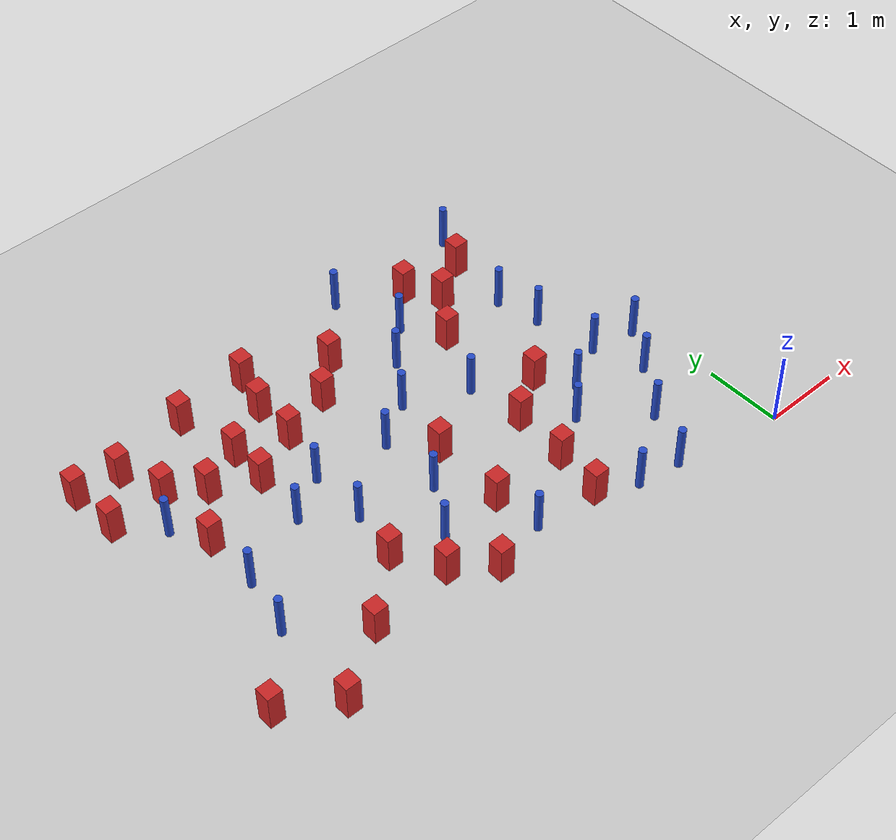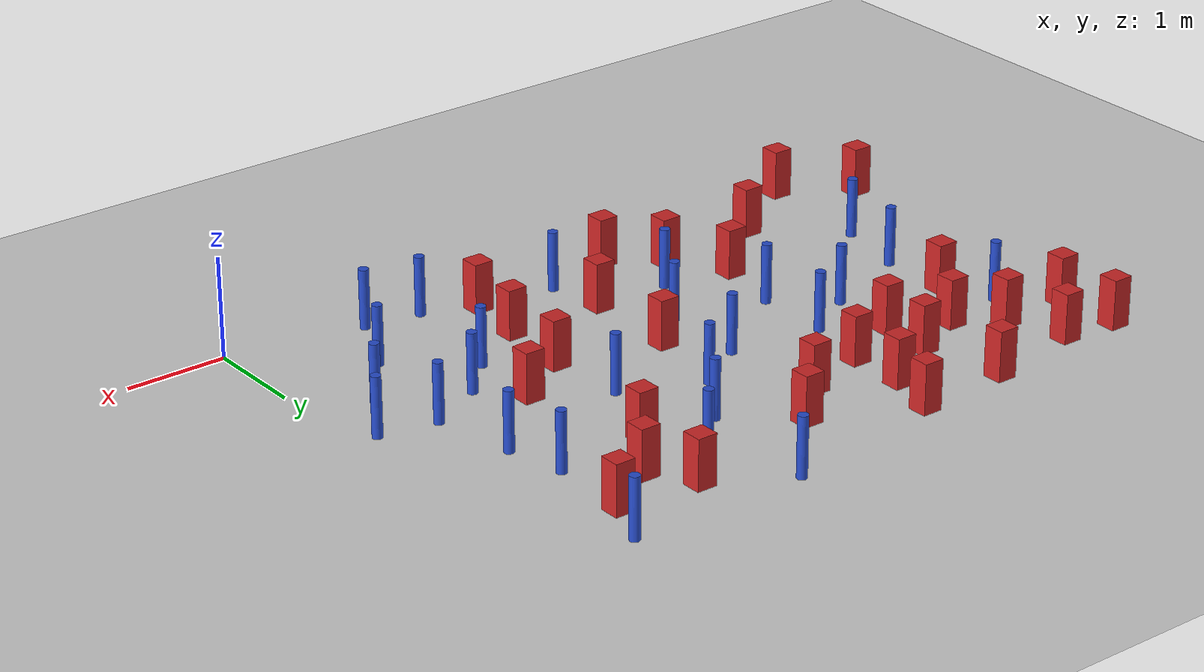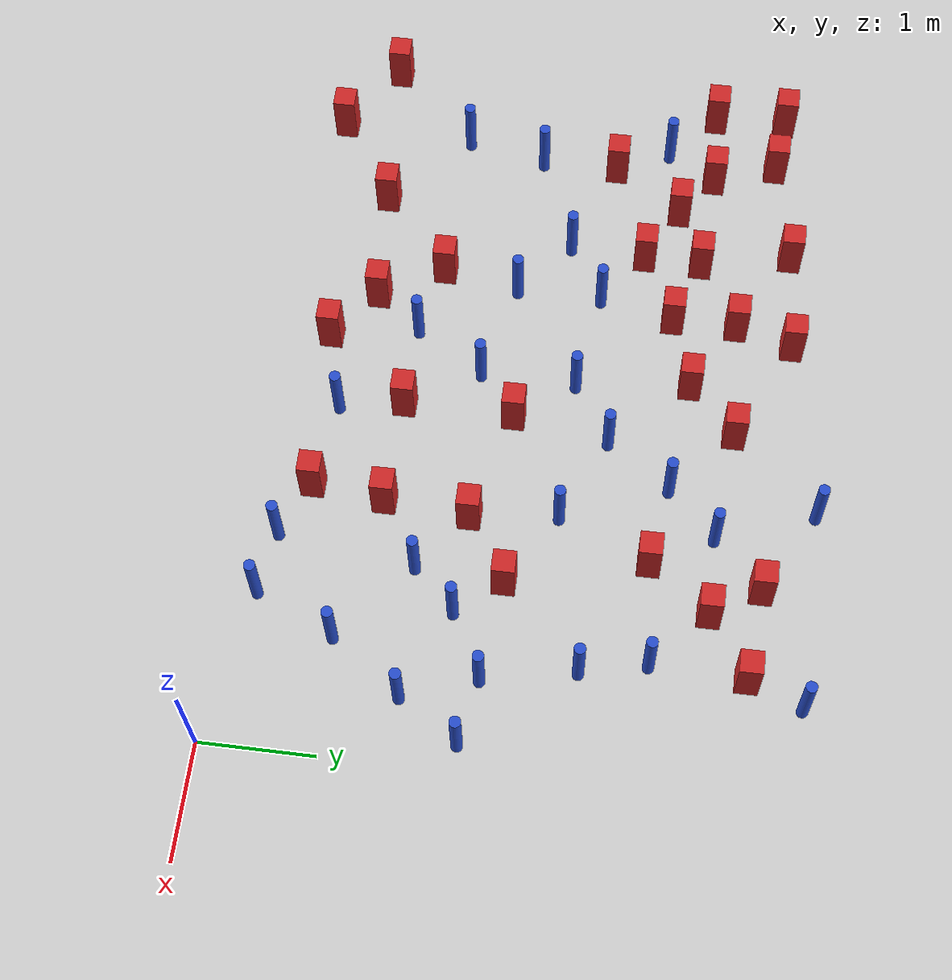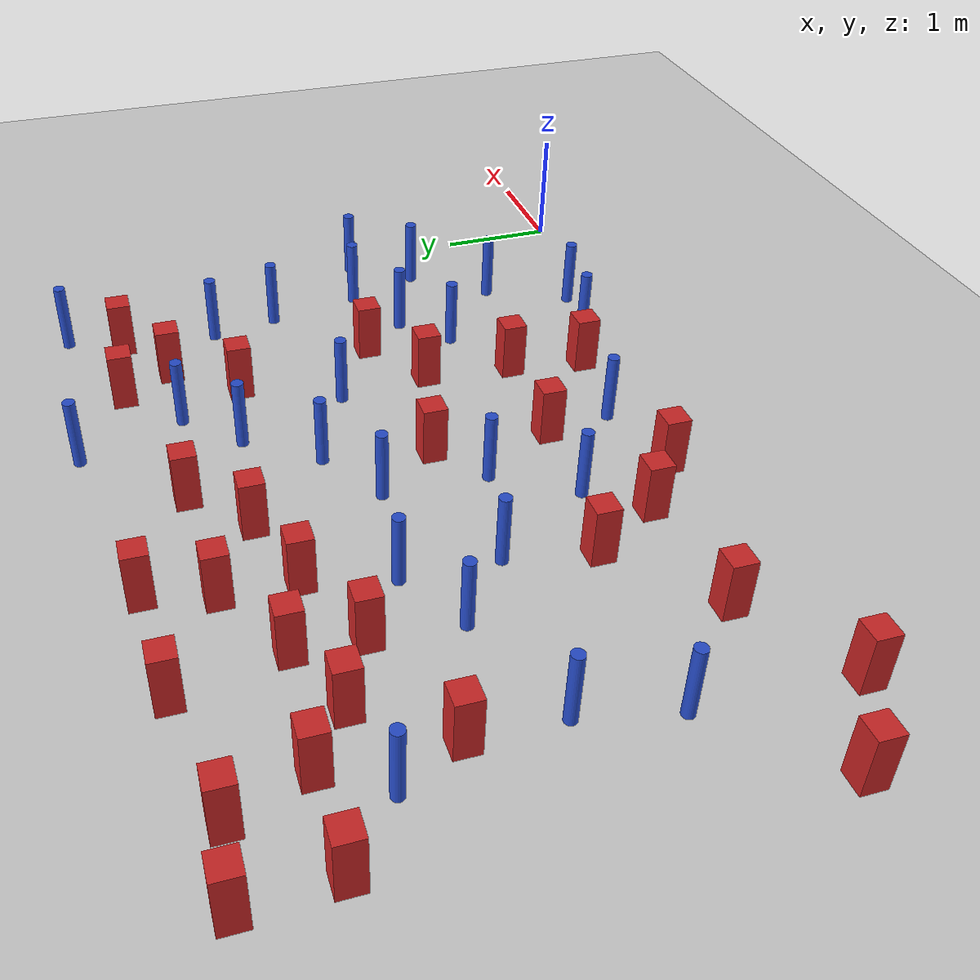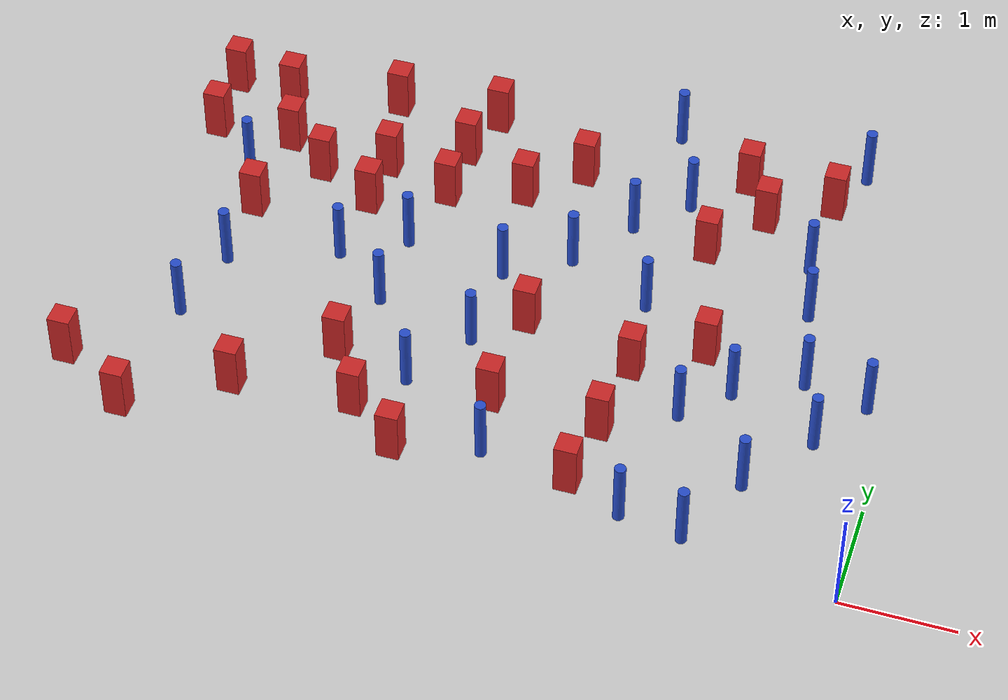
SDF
<sdf version="1.6">
 <world name="default">
  <model name="ground_plane">
   <static>1</static>
   <link name="link">
    <collision name="collision">
     <geometry><plane><normal>0 0 1</normal><size>100 100</size></plane></geometry>
     <surface><friction><ode><mu>100</mu><mu2>50</mu2></ode></friction></surface>
    </collision>
    <visual name="visual">
     <cast_shadows>0</cast_shadows>
     <geometry><plane><normal>0 0 1</normal><size>100 100</size></plane></geometry>
     <material>
      <ambient>1.0 1.0 1.0 1.0</ambient>
      <diffuse>0.8 0.8 0.8 1.0</diffuse>
      <specular>0.01 0.01 0.01 1.000000</specular>
     </material>
    </visual>
   </link>
  </model>
  <model name="pole_obstacle5">
   <static>true</static>
   <pose>-0.953068003208 3.04514547028 -9.47619616065e-06 5.49618799737e-07 2.36310414063e-07 -1.55090534799e-07</pose>
   <link name="link">
    <pose>0 0 0.3 0 -0 0</pose>
    <inertial>
     <mass>1</mass>
     <inertia><ixx>0.145833</ixx><ixy>0</ixy><ixz>0</ixz><iyy>0.145833</iyy><iyz>0</iyz><izz>0.125</izz></inertia>
    </inertial>
    <collision name="collision">
     <geometry><cylinder><radius>0.05</radius><length>.6</length></cylinder></geometry>
    </collision>
    <visual name="visual">
     <geometry><cylinder><radius>0.05</radius><length>.6</length></cylinder></geometry>
     <material>
      <script><name>Gazebo/Blue</name><uri>file://media/materials/scripts/gazebo.material</uri></script>
     </material>
    </visual>
   </link>
  </model>
  <model name="square_post_obstacle15">
   <static>true</static>
   <pose>-2.33421557105 1.21266840727 -6.11067671241e-07 -5.50515727128e-06 -8.79689657224e-07 2.37013304536e-05</pose>
   <link name="link">
    <pose>0 0 0.25 0 -0 0</pose>
    <inertial>
     <mass>100</mass>
     <inertia>
      <ixx>0.166667</ixx>
      <ixy>0</ixy>
      <ixz>0</ixz>
      <iyy>0.166667</iyy>
      <iyz>0</iyz>
      <izz>0.166667</izz>
     </inertia>
    </inertial>
    <collision name="collision"><geometry><box><size>.2 .2 .5</size></box></geometry></collision>
    <visual name="visual">
     <geometry><box><size>.2 .2 .5</size></box></geometry>
     <material>
      <script><name>Gazebo/Red</name><uri>file://media/materials/scripts/gazebo.material</uri></script>
     </material>
    </visual>
   </link>
  </model>
  <model name="pole_obstacle10">
   <static>true</static>
   <pose>-3.21601077242 0.668306440457 -9.47619616065e-06 5.49618799737e-07 2.36310414035e-07 -1.55090534817e-07</pose>
   <link name="link">
    <pose>0 0 0.3 0 -0 0</pose>
    <inertial>
     <mass>1</mass>
     <inertia><ixx>0.145833</ixx><ixy>0</ixy><ixz>0</ixz><iyy>0.145833</iyy><iyz>0</iyz><izz>0.125</izz></inertia>
    </inertial>
    <collision name="collision">
     <geometry><cylinder><radius>0.05</radius><length>.6</length></cylinder></geometry>
    </collision>
    <visual name="visual">
     <geometry><cylinder><radius>0.05</radius><length>.6</length></cylinder></geometry>
     <material>
      <script><name>Gazebo/Blue</name><uri>file://media/materials/scripts/gazebo.material</uri></script>
     </material>
    </visual>
   </link>
  </model>
  <model name="pole_obstacle12">
   <static>true</static>
   <pose>-4.60165757841 2.87989179332 -9.47619616065e-06 5.49618799738e-07 2.36310414051e-07 -1.55090534805e-07</pose>
   <link name="link">
    <pose>0 0 0.3 0 -0 0</pose>
    <inertial>
     <mass>1</mass>
     <inertia><ixx>0.145833</ixx><ixy>0</ixy><ixz>0</ixz><iyy>0.145833</iyy><iyz>0</iyz><izz>0.125</izz></inertia>
    </inertial>
    <collision name="collision">
     <geometry><cylinder><radius>0.05</radius><length>.6</length></cylinder></geometry>
    </collision>
    <visual name="visual">
     <geometry><cylinder><radius>0.05</radius><length>.6</length></cylinder></geometry>
     <material>
      <script><name>Gazebo/Blue</name><uri>file://media/materials/scripts/gazebo.material</uri></script>
     </material>
    </visual>
   </link>
  </model>
  <model name="square_post_obstacle27">
   <static>true</static>
   <pose>-4.41894908498 0.850606576677 -6.11067671241e-07 -5.50515727128e-06 -8.79689657224e-07 2.37013304536e-05</pose>
   <link name="link">
    <pose>0 0 0.25 0 -0 0</pose>
    <inertial>
     <mass>100</mass>
     <inertia>
      <ixx>0.166667</ixx>
      <ixy>0</ixy>
      <ixz>0</ixz>
      <iyy>0.166667</iyy>
      <iyz>0</iyz>
      <izz>0.166667</izz>
     </inertia>
    </inertial>
    <collision name="collision"><geometry><box><size>.2 .2 .5</size></box></geometry></collision>
    <visual name="visual">
     <geometry><box><size>.2 .2 .5</size></box></geometry>
     <material>
      <script><name>Gazebo/Red</name><uri>file://media/materials/scripts/gazebo.material</uri></script>
     </material>
    </visual>
   </link>
  </model>
  <model name="pole_obstacle31">
   <static>true</static>
   <pose>-0.565450874374 1.59621999711 -9.47619616065e-06 5.49618799738e-07 2.36310414061e-07 -1.55090534801e-07</pose>
   <link name="link">
    <pose>0 0 0.3 0 -0 0</pose>
    <inertial>
     <mass>1</mass>
     <inertia><ixx>0.145833</ixx><ixy>0</ixy><ixz>0</ixz><iyy>0.145833</iyy><iyz>0</iyz><izz>0.125</izz></inertia>
    </inertial>
    <collision name="collision">
     <geometry><cylinder><radius>0.05</radius><length>.6</length></cylinder></geometry>
    </collision>
    <visual name="visual">
     <geometry><cylinder><radius>0.05</radius><length>.6</length></cylinder></geometry>
     <material>
      <script><name>Gazebo/Blue</name><uri>file://media/materials/scripts/gazebo.material</uri></script>
     </material>
    </visual>
   </link>
  </model>
  <model name="pole_obstacle35">
   <static>true</static>
   <pose>-0.220098208647 2.12647914286 -9.4761961606e-06 5.49618799729e-07 2.36310413995e-07 -1.55090534826e-07</pose>
   <link name="link">
    <pose>0 0 0.3 0 -0 0</pose>
    <inertial>
     <mass>1</mass>
     <inertia><ixx>0.145833</ixx><ixy>0</ixy><ixz>0</ixz><iyy>0.145833</iyy><iyz>0</iyz><izz>0.125</izz></inertia>
    </inertial>
    <collision name="collision">
     <geometry><cylinder><radius>0.05</radius><length>.6</length></cylinder></geometry>
    </collision>
    <visual name="visual">
     <geometry><cylinder><radius>0.05</radius><length>.6</length></cylinder></geometry>
     <material>
      <script><name>Gazebo/Blue</name><uri>file://media/materials/scripts/gazebo.material</uri></script>
     </material>
    </visual>
   </link>
  </model>
  <model name="square_post_obstacle39">
   <static>true</static>
   <pose>-6.32148838797 0.246880284549 -6.11067671241e-07 -5.50515727128e-06 -8.79689657224e-07 2.37013304536e-05</pose>
   <link name="link">
    <pose>0 0 0.25 0 -0 0</pose>
    <inertial>
     <mass>100</mass>
     <inertia>
      <ixx>0.166667</ixx>
      <ixy>0</ixy>
      <ixz>0</ixz>
      <iyy>0.166667</iyy>
      <iyz>0</iyz>
      <izz>0.166667</izz>
     </inertia>
    </inertial>
    <collision name="collision"><geometry><box><size>.2 .2 .5</size></box></geometry></collision>
    <visual name="visual">
     <geometry><box><size>.2 .2 .5</size></box></geometry>
     <material>
      <script><name>Gazebo/Red</name><uri>file://media/materials/scripts/gazebo.material</uri></script>
     </material>
    </visual>
   </link>
  </model>
  <model name="square_post_obstacle47">
   <static>true</static>
   <pose>-5.10277533483 3.24362882426 -6.11067671241e-07 -5.50515727128e-06 -8.79689657224e-07 2.37013304536e-05</pose>
   <link name="link">
    <pose>0 0 0.25 0 -0 0</pose>
    <inertial>
     <mass>100</mass>
     <inertia>
      <ixx>0.166667</ixx>
      <ixy>0</ixy>
      <ixz>0</ixz>
      <iyy>0.166667</iyy>
      <iyz>0</iyz>
      <izz>0.166667</izz>
     </inertia>
    </inertial>
    <collision name="collision"><geometry><box><size>.2 .2 .5</size></box></geometry></collision>
    <visual name="visual">
     <geometry><box><size>.2 .2 .5</size></box></geometry>
     <material>
      <script><name>Gazebo/Red</name><uri>file://media/materials/scripts/gazebo.material</uri></script>
     </material>
    </visual>
   </link>
  </model>
  <model name="pole_obstacle46">
   <static>true</static>
   <pose>-4.61126781005 2.1109563667 -9.47619616065e-06 5.49618799738e-07 2.36310414051e-07 -1.55090534805e-07</pose>
   <link name="link">
    <pose>0 0 0.3 0 -0 0</pose>
    <inertial>
     <mass>1</mass>
     <inertia><ixx>0.145833</ixx><ixy>0</ixy><ixz>0</ixz><iyy>0.145833</iyy><iyz>0</iyz><izz>0.125</izz></inertia>
    </inertial>
    <collision name="collision">
     <geometry><cylinder><radius>0.05</radius><length>.6</length></cylinder></geometry>
    </collision>
    <visual name="visual">
     <geometry><cylinder><radius>0.05</radius><length>.6</length></cylinder></geometry>
     <material>
      <script><name>Gazebo/Blue</name><uri>file://media/materials/scripts/gazebo.material</uri></script>
     </material>
    </visual>
   </link>
  </model>
  <model name="square_post_obstacle57">
   <static>true</static>
   <pose>-6.05487835221 3.82142807516 -6.11067671241e-07 -5.50515727128e-06 -8.79689657224e-07 2.37013304536e-05</pose>
   <link name="link">
    <pose>0 0 0.25 0 -0 0</pose>
    <inertial>
     <mass>100</mass>
     <inertia>
      <ixx>0.166667</ixx>
      <ixy>0</ixy>
      <ixz>0</ixz>
      <iyy>0.166667</iyy>
      <iyz>0</iyz>
      <izz>0.166667</izz>
     </inertia>
    </inertial>
    <collision name="collision"><geometry><box><size>.2 .2 .5</size></box></geometry></collision>
    <visual name="visual">
     <geometry><box><size>.2 .2 .5</size></box></geometry>
     <material>
      <script><name>Gazebo/Red</name><uri>file://media/materials/scripts/gazebo.material</uri></script>
     </material>
    </visual>
   </link>
  </model>
  <model name="square_post_obstacle66">
   <static>true</static>
   <pose>-2.26788447009 1.9641347179 -6.11067671241e-07 -5.50515727128e-06 -8.79689657224e-07 2.37013304536e-05</pose>
   <link name="link">
    <pose>0 0 0.25 0 -0 0</pose>
    <inertial>
     <mass>100</mass>
     <inertia>
      <ixx>0.166667</ixx>
      <ixy>0</ixy>
      <ixz>0</ixz>
      <iyy>0.166667</iyy>
      <iyz>0</iyz>
      <izz>0.166667</izz>
     </inertia>
    </inertial>
    <collision name="collision"><geometry><box><size>.2 .2 .5</size></box></geometry></collision>
    <visual name="visual">
     <geometry><box><size>.2 .2 .5</size></box></geometry>
     <material>
      <script><name>Gazebo/Red</name><uri>file://media/materials/scripts/gazebo.material</uri></script>
     </material>
    </visual>
   </link>
  </model>
  <model name="pole_obstacle65">
   <static>true</static>
   <pose>-1.36015397111 0.264044783699 -9.47619616065e-06 5.49618799737e-07 2.36310414064e-07 -1.55090534799e-07</pose>
   <link name="link">
    <pose>0 0 0.3 0 -0 0</pose>
    <inertial>
     <mass>1</mass>
     <inertia><ixx>0.145833</ixx><ixy>0</ixy><ixz>0</ixz><iyy>0.145833</iyy><iyz>0</iyz><izz>0.125</izz></inertia>
    </inertial>
    <collision name="collision">
     <geometry><cylinder><radius>0.05</radius><length>.6</length></cylinder></geometry>
    </collision>
    <visual name="visual">
     <geometry><cylinder><radius>0.05</radius><length>.6</length></cylinder></geometry>
     <material>
      <script><name>Gazebo/Blue</name><uri>file://media/materials/scripts/gazebo.material</uri></script>
     </material>
    </visual>
   </link>
  </model>
  <model name="square_post_obstacle74">
   <static>true</static>
   <pose>-6.98948690886 0.68153054935 -6.11067671241e-07 -5.50515727128e-06 -8.79689657224e-07 2.37013304536e-05</pose>
   <link name="link">
    <pose>0 0 0.25 0 -0 0</pose>
    <inertial>
     <mass>100</mass>
     <inertia>
      <ixx>0.166667</ixx>
      <ixy>0</ixy>
      <ixz>0</ixz>
      <iyy>0.166667</iyy>
      <iyz>0</iyz>
      <izz>0.166667</izz>
     </inertia>
    </inertial>
    <collision name="collision"><geometry><box><size>.2 .2 .5</size></box></geometry></collision>
    <visual name="visual">
     <geometry><box><size>.2 .2 .5</size></box></geometry>
     <material>
      <script><name>Gazebo/Red</name><uri>file://media/materials/scripts/gazebo.material</uri></script>
     </material>
    </visual>
   </link>
  </model>
  <model name="pole_obstacle70">
   <static>true</static>
   <pose>-6.24569965573 1.46182236954 -9.47619616065e-06 5.49618799738e-07 2.36310414071e-07 -1.55090534796e-07</pose>
   <link name="link">
    <pose>0 0 0.3 0 -0 0</pose>
    <inertial>
     <mass>1</mass>
     <inertia><ixx>0.145833</ixx><ixy>0</ixy><ixz>0</ixz><iyy>0.145833</iyy><iyz>0</iyz><izz>0.125</izz></inertia>
    </inertial>
    <collision name="collision">
     <geometry><cylinder><radius>0.05</radius><length>.6</length></cylinder></geometry>
    </collision>
    <visual name="visual">
     <geometry><cylinder><radius>0.05</radius><length>.6</length></cylinder></geometry>
     <material>
      <script><name>Gazebo/Blue</name><uri>file://media/materials/scripts/gazebo.material</uri></script>
     </material>
    </visual>
   </link>
  </model>
  <model name="pole_obstacle74">
   <static>true</static>
   <pose>-6.08423297261 2.19082523521 -9.47619616065e-06 5.49618799738e-07 2.36310414051e-07 -1.55090534805e-07</pose>
   <link name="link">
    <pose>0 0 0.3 0 -0 0</pose>
    <inertial>
     <mass>1</mass>
     <inertia><ixx>0.145833</ixx><ixy>0</ixy><ixz>0</ixz><iyy>0.145833</iyy><iyz>0</iyz><izz>0.125</izz></inertia>
    </inertial>
    <collision name="collision">
     <geometry><cylinder><radius>0.05</radius><length>.6</length></cylinder></geometry>
    </collision>
    <visual name="visual">
     <geometry><cylinder><radius>0.05</radius><length>.6</length></cylinder></geometry>
     <material>
      <script><name>Gazebo/Blue</name><uri>file://media/materials/scripts/gazebo.material</uri></script>
     </material>
    </visual>
   </link>
  </model>
  <model name="pole_obstacle77">
   <static>true</static>
   <pose>-1.02731536062 0.96657327215 -9.47619616065e-06 5.49618799738e-07 2.36310414065e-07 -1.55090534798e-07</pose>
   <link name="link">
    <pose>0 0 0.3 0 -0 0</pose>
    <inertial>
     <mass>1</mass>
     <inertia><ixx>0.145833</ixx><ixy>0</ixy><ixz>0</ixz><iyy>0.145833</iyy><iyz>0</iyz><izz>0.125</izz></inertia>
    </inertial>
    <collision name="collision">
     <geometry><cylinder><radius>0.05</radius><length>.6</length></cylinder></geometry>
    </collision>
    <visual name="visual">
     <geometry><cylinder><radius>0.05</radius><length>.6</length></cylinder></geometry>
     <material>
      <script><name>Gazebo/Blue</name><uri>file://media/materials/scripts/gazebo.material</uri></script>
     </material>
    </visual>
   </link>
  </model>
  <model name="pole_obstacle78">
   <static>true</static>
   <pose>-1.36552198362 1.94060481462 -9.47619616065e-06 5.49618799737e-07 2.36310414065e-07 -1.55090534798e-07</pose>
   <link name="link">
    <pose>0 0 0.3 0 -0 0</pose>
    <inertial>
     <mass>1</mass>
     <inertia><ixx>0.145833</ixx><ixy>0</ixy><ixz>0</ixz><iyy>0.145833</iyy><iyz>0</iyz><izz>0.125</izz></inertia>
    </inertial>
    <collision name="collision">
     <geometry><cylinder><radius>0.05</radius><length>.6</length></cylinder></geometry>
    </collision>
    <visual name="visual">
     <geometry><cylinder><radius>0.05</radius><length>.6</length></cylinder></geometry>
     <material>
      <script><name>Gazebo/Blue</name><uri>file://media/materials/scripts/gazebo.material</uri></script>
     </material>
    </visual>
   </link>
  </model>
  <model name="square_post_obstacle79">
   <static>true</static>
   <pose>-5.49745301071 0.776666388535 -6.11067671241e-07 -5.50515727128e-06 -8.79689657224e-07 2.37013304536e-05</pose>
   <link name="link">
    <pose>0 0 0.25 0 -0 0</pose>
    <inertial>
     <mass>100</mass>
     <inertia>
      <ixx>0.166667</ixx>
      <ixy>0</ixy>
      <ixz>0</ixz>
      <iyy>0.166667</iyy>
      <iyz>0</iyz>
      <izz>0.166667</izz>
     </inertia>
    </inertial>
    <collision name="collision"><geometry><box><size>.2 .2 .5</size></box></geometry></collision>
    <visual name="visual">
     <geometry><box><size>.2 .2 .5</size></box></geometry>
     <material>
      <script><name>Gazebo/Red</name><uri>file://media/materials/scripts/gazebo.material</uri></script>
     </material>
    </visual>
   </link>
  </model>
  <model name="pole_obstacle100">
   <static>true</static>
   <pose>-0.847207491964 4.9126853286 -9.47619616065e-06 5.49618799737e-07 2.36310414065e-07 -1.55090534796e-07</pose>
   <link name="link">
    <pose>0 0 0.3 0 -0 0</pose>
    <inertial>
     <mass>1</mass>
     <inertia><ixx>0.145833</ixx><ixy>0</ixy><ixz>0</ixz><iyy>0.145833</iyy><iyz>0</iyz><izz>0.125</izz></inertia>
    </inertial>
    <collision name="collision">
     <geometry><cylinder><radius>0.05</radius><length>.6</length></cylinder></geometry>
    </collision>
    <visual name="visual">
     <geometry><cylinder><radius>0.05</radius><length>.6</length></cylinder></geometry>
     <material>
      <script><name>Gazebo/Blue</name><uri>file://media/materials/scripts/gazebo.material</uri></script>
     </material>
    </visual>
   </link>
  </model>
  <model name="square_post_obstacle92">
   <static>true</static>
   <pose>-5.25193172266 4.58202953938 -6.11067671241e-07 -5.50515727128e-06 -8.79689657224e-07 2.37013304536e-05</pose>
   <link name="link">
    <pose>0 0 0.25 0 -0 0</pose>
    <inertial>
     <mass>100</mass>
     <inertia>
      <ixx>0.166667</ixx>
      <ixy>0</ixy>
      <ixz>0</ixz>
      <iyy>0.166667</iyy>
      <iyz>0</iyz>
      <izz>0.166667</izz>
     </inertia>
    </inertial>
    <collision name="collision"><geometry><box><size>.2 .2 .5</size></box></geometry></collision>
    <visual name="visual">
     <geometry><box><size>.2 .2 .5</size></box></geometry>
     <material>
      <script><name>Gazebo/Red</name><uri>file://media/materials/scripts/gazebo.material</uri></script>
     </material>
    </visual>
   </link>
  </model>
  <model name="square_post_obstacle97">
   <static>true</static>
   <pose>-4.75380878249 1.42036395413 -6.11067671241e-07 -5.50515727128e-06 -8.79689657224e-07 2.37013304536e-05</pose>
   <link name="link">
    <pose>0 0 0.25 0 -0 0</pose>
    <inertial>
     <mass>100</mass>
     <inertia>
      <ixx>0.166667</ixx>
      <ixy>0</ixy>
      <ixz>0</ixz>
      <iyy>0.166667</iyy>
      <iyz>0</iyz>
      <izz>0.166667</izz>
     </inertia>
    </inertial>
    <collision name="collision"><geometry><box><size>.2 .2 .5</size></box></geometry></collision>
    <visual name="visual">
     <geometry><box><size>.2 .2 .5</size></box></geometry>
     <material>
      <script><name>Gazebo/Red</name><uri>file://media/materials/scripts/gazebo.material</uri></script>
     </material>
    </visual>
   </link>
  </model>
  <model name="pole_obstacle114">
   <static>true</static>
   <pose>-3.69332868991 1.88564906061 -9.47619616065e-06 5.49618799737e-07 2.36310414072e-07 -1.55090534793e-07</pose>
   <link name="link">
    <pose>0 0 0.3 0 -0 0</pose>
    <inertial>
     <mass>1</mass>
     <inertia><ixx>0.145833</ixx><ixy>0</ixy><ixz>0</ixz><iyy>0.145833</iyy><iyz>0</iyz><izz>0.125</izz></inertia>
    </inertial>
    <collision name="collision">
     <geometry><cylinder><radius>0.05</radius><length>.6</length></cylinder></geometry>
    </collision>
    <visual name="visual">
     <geometry><cylinder><radius>0.05</radius><length>.6</length></cylinder></geometry>
     <material>
      <script><name>Gazebo/Blue</name><uri>file://media/materials/scripts/gazebo.material</uri></script>
     </material>
    </visual>
   </link>
  </model>
  <model name="square_post_obstacle110">
   <static>true</static>
   <pose>-3.28994210962 2.22960579509 -6.11067671241e-07 -5.50515727128e-06 -8.79689657224e-07 2.37013304536e-05</pose>
   <link name="link">
    <pose>0 0 0.25 0 -0 0</pose>
    <inertial>
     <mass>100</mass>
     <inertia>
      <ixx>0.166667</ixx>
      <ixy>0</ixy>
      <ixz>0</ixz>
      <iyy>0.166667</iyy>
      <iyz>0</iyz>
      <izz>0.166667</izz>
     </inertia>
    </inertial>
    <collision name="collision"><geometry><box><size>.2 .2 .5</size></box></geometry></collision>
    <visual name="visual">
     <geometry><box><size>.2 .2 .5</size></box></geometry>
     <material>
      <script><name>Gazebo/Red</name><uri>file://media/materials/scripts/gazebo.material</uri></script>
     </material>
    </visual>
   </link>
  </model>
  <model name="pole_obstacle122">
   <static>true</static>
   <pose>-5.14392340597 2.55396974573 -9.47619616065e-06 5.49618799738e-07 2.36310414051e-07 -1.55090534805e-07</pose>
   <link name="link">
    <pose>0 0 0.3 0 -0 0</pose>
    <inertial>
     <mass>1</mass>
     <inertia><ixx>0.145833</ixx><ixy>0</ixy><ixz>0</ixz><iyy>0.145833</iyy><iyz>0</iyz><izz>0.125</izz></inertia>
    </inertial>
    <collision name="collision">
     <geometry><cylinder><radius>0.05</radius><length>.6</length></cylinder></geometry>
    </collision>
    <visual name="visual">
     <geometry><cylinder><radius>0.05</radius><length>.6</length></cylinder></geometry>
     <material>
      <script><name>Gazebo/Blue</name><uri>file://media/materials/scripts/gazebo.material</uri></script>
     </material>
    </visual>
   </link>
  </model>
  <model name="pole_obstacle124">
   <static>true</static>
   <pose>-6.31979372047 3.38048947856 -9.47619616065e-06 5.49618799738e-07 2.36310414051e-07 -1.55090534805e-07</pose>
   <link name="link">
    <pose>0 0 0.3 0 -0 0</pose>
    <inertial>
     <mass>1</mass>
     <inertia><ixx>0.145833</ixx><ixy>0</ixy><ixz>0</ixz><iyy>0.145833</iyy><iyz>0</iyz><izz>0.125</izz></inertia>
    </inertial>
    <collision name="collision">
     <geometry><cylinder><radius>0.05</radius><length>.6</length></cylinder></geometry>
    </collision>
    <visual name="visual">
     <geometry><cylinder><radius>0.05</radius><length>.6</length></cylinder></geometry>
     <material>
      <script><name>Gazebo/Blue</name><uri>file://media/materials/scripts/gazebo.material</uri></script>
     </material>
    </visual>
   </link>
  </model>
  <model name="pole_obstacle127">
   <static>true</static>
   <pose>-3.67284798309 2.7427588319 -9.47619616065e-06 5.49618799737e-07 2.36310414051e-07 -1.55090534807e-07</pose>
   <link name="link">
    <pose>0 0 0.3 0 -0 0</pose>
    <inertial>
     <mass>1</mass>
     <inertia><ixx>0.145833</ixx><ixy>0</ixy><ixz>0</ixz><iyy>0.145833</iyy><iyz>0</iyz><izz>0.125</izz></inertia>
    </inertial>
    <collision name="collision">
     <geometry><cylinder><radius>0.05</radius><length>.6</length></cylinder></geometry>
    </collision>
    <visual name="visual">
     <geometry><cylinder><radius>0.05</radius><length>.6</length></cylinder></geometry>
     <material>
      <script><name>Gazebo/Blue</name><uri>file://media/materials/scripts/gazebo.material</uri></script>
     </material>
    </visual>
   </link>
  </model>
  <model name="square_post_obstacle113">
   <static>true</static>
   <pose>-1.04859002698 4.43911163156 -6.11067671241e-07 -5.50515727128e-06 -8.79689657224e-07 2.37013304536e-05</pose>
   <link name="link">
    <pose>0 0 0.25 0 -0 0</pose>
    <inertial>
     <mass>100</mass>
     <inertia>
      <ixx>0.166667</ixx>
      <ixy>0</ixy>
      <ixz>0</ixz>
      <iyy>0.166667</iyy>
      <iyz>0</iyz>
      <izz>0.166667</izz>
     </inertia>
    </inertial>
    <collision name="collision"><geometry><box><size>.2 .2 .5</size></box></geometry></collision>
    <visual name="visual">
     <geometry><box><size>.2 .2 .5</size></box></geometry>
     <material>
      <script><name>Gazebo/Red</name><uri>file://media/materials/scripts/gazebo.material</uri></script>
     </material>
    </visual>
   </link>
  </model>
  <model name="square_post_obstacle120">
   <static>true</static>
   <pose>-6.25507806642 4.3928767767 -6.11067671241e-07 -5.50515727128e-06 -8.79689657224e-07 2.37013304536e-05</pose>
   <link name="link">
    <pose>0 0 0.25 0 -0 0</pose>
    <inertial>
     <mass>100</mass>
     <inertia>
      <ixx>0.166667</ixx>
      <ixy>0</ixy>
      <ixz>0</ixz>
      <iyy>0.166667</iyy>
      <iyz>0</iyz>
      <izz>0.166667</izz>
     </inertia>
    </inertial>
    <collision name="collision"><geometry><box><size>.2 .2 .5</size></box></geometry></collision>
    <visual name="visual">
     <geometry><box><size>.2 .2 .5</size></box></geometry>
     <material>
      <script><name>Gazebo/Red</name><uri>file://media/materials/scripts/gazebo.material</uri></script>
     </material>
    </visual>
   </link>
  </model>
  <model name="square_post_obstacle122">
   <static>true</static>
   <pose>-3.77797663775 3.76144930319 -6.11067671241e-07 -5.50515727128e-06 -8.79689657224e-07 2.37013304536e-05</pose>
   <link name="link">
    <pose>0 0 0.25 0 -0 0</pose>
    <inertial>
     <mass>100</mass>
     <inertia>
      <ixx>0.166667</ixx>
      <ixy>0</ixy>
      <ixz>0</ixz>
      <iyy>0.166667</iyy>
      <iyz>0</iyz>
      <izz>0.166667</izz>
     </inertia>
    </inertial>
    <collision name="collision"><geometry><box><size>.2 .2 .5</size></box></geometry></collision>
    <visual name="visual">
     <geometry><box><size>.2 .2 .5</size></box></geometry>
     <material>
      <script><name>Gazebo/Red</name><uri>file://media/materials/scripts/gazebo.material</uri></script>
     </material>
    </visual>
   </link>
  </model>
  <model name="square_post_obstacle127">
   <static>true</static>
   <pose>-2.00382921412 3.54361886954 -6.11067671241e-07 -5.50515727128e-06 -8.79689657224e-07 2.37013304536e-05</pose>
   <link name="link">
    <pose>0 0 0.25 0 -0 0</pose>
    <inertial>
     <mass>100</mass>
     <inertia>
      <ixx>0.166667</ixx>
      <ixy>0</ixy>
      <ixz>0</ixz>
      <iyy>0.166667</iyy>
      <iyz>0</iyz>
      <izz>0.166667</izz>
     </inertia>
    </inertial>
    <collision name="collision"><geometry><box><size>.2 .2 .5</size></box></geometry></collision>
    <visual name="visual">
     <geometry><box><size>.2 .2 .5</size></box></geometry>
     <material>
      <script><name>Gazebo/Red</name><uri>file://media/materials/scripts/gazebo.material</uri></script>
     </material>
    </visual>
   </link>
  </model>
  <model name="square_post_obstacle130">
   <static>true</static>
   <pose>-4.44155401331 4.13234041692 -6.11067671241e-07 -5.50515727128e-06 -8.79689657224e-07 2.37013304536e-05</pose>
   <link name="link">
    <pose>0 0 0.25 0 -0 0</pose>
    <inertial>
     <mass>100</mass>
     <inertia>
      <ixx>0.166667</ixx>
      <ixy>0</ixy>
      <ixz>0</ixz>
      <iyy>0.166667</iyy>
      <iyz>0</iyz>
      <izz>0.166667</izz>
     </inertia>
    </inertial>
    <collision name="collision"><geometry><box><size>.2 .2 .5</size></box></geometry></collision>
    <visual name="visual">
     <geometry><box><size>.2 .2 .5</size></box></geometry>
     <material>
      <script><name>Gazebo/Red</name><uri>file://media/materials/scripts/gazebo.material</uri></script>
     </material>
    </visual>
   </link>
  </model>
  <model name="square_post_obstacle131">
   <static>true</static>
   <pose>-6.08136832798 2.89737371929 -6.11067671241e-07 -5.50515727128e-06 -8.79689657224e-07 2.37013304536e-05</pose>
   <link name="link">
    <pose>0 0 0.25 0 -0 0</pose>
    <inertial>
     <mass>100</mass>
     <inertia>
      <ixx>0.166667</ixx>
      <ixy>0</ixy>
      <ixz>0</ixz>
      <iyy>0.166667</iyy>
      <iyz>0</iyz>
      <izz>0.166667</izz>
     </inertia>
    </inertial>
    <collision name="collision"><geometry><box><size>.2 .2 .5</size></box></geometry></collision>
    <visual name="visual">
     <geometry><box><size>.2 .2 .5</size></box></geometry>
     <material>
      <script><name>Gazebo/Red</name><uri>file://media/materials/scripts/gazebo.material</uri></script>
     </material>
    </visual>
   </link>
  </model>
  <model name="square_post_obstacle134">
   <static>true</static>
   <pose>-6.78015559482 3.79815639442 -6.11067671241e-07 -5.50515727128e-06 -8.79689657224e-07 2.37013304536e-05</pose>
   <link name="link">
    <pose>0 0 0.25 0 -0 0</pose>
    <inertial>
     <mass>100</mass>
     <inertia>
      <ixx>0.166667</ixx>
      <ixy>0</ixy>
      <ixz>0</ixz>
      <iyy>0.166667</iyy>
      <iyz>0</iyz>
      <izz>0.166667</izz>
     </inertia>
    </inertial>
    <collision name="collision"><geometry><box><size>.2 .2 .5</size></box></geometry></collision>
    <visual name="visual">
     <geometry><box><size>.2 .2 .5</size></box></geometry>
     <material>
      <script><name>Gazebo/Red</name><uri>file://media/materials/scripts/gazebo.material</uri></script>
     </material>
    </visual>
   </link>
  </model>
  <model name="pole_obstacle150">
   <static>true</static>
   <pose>-2.34983191991 2.734519231 -9.47619616065e-06 5.49618799737e-07 2.36310414051e-07 -1.55090534807e-07</pose>
   <link name="link">
    <pose>0 0 0.3 0 -0 0</pose>
    <inertial>
     <mass>1</mass>
     <inertia><ixx>0.145833</ixx><ixy>0</ixy><ixz>0</ixz><iyy>0.145833</iyy><iyz>0</iyz><izz>0.125</izz></inertia>
    </inertial>
    <collision name="collision">
     <geometry><cylinder><radius>0.05</radius><length>.6</length></cylinder></geometry>
    </collision>
    <visual name="visual">
     <geometry><cylinder><radius>0.05</radius><length>.6</length></cylinder></geometry>
     <material>
      <script><name>Gazebo/Blue</name><uri>file://media/materials/scripts/gazebo.material</uri></script>
     </material>
    </visual>
   </link>
  </model>
  <model name="pole_obstacle154">
   <static>true</static>
   <pose>-3.12689237985 3.08640311982 -9.47619616065e-06 5.49618799737e-07 2.36310414067e-07 -1.55090534797e-07</pose>
   <link name="link">
    <pose>0 0 0.3 0 -0 0</pose>
    <inertial>
     <mass>1</mass>
     <inertia><ixx>0.145833</ixx><ixy>0</ixy><ixz>0</ixz><iyy>0.145833</iyy><iyz>0</iyz><izz>0.125</izz></inertia>
    </inertial>
    <collision name="collision">
     <geometry><cylinder><radius>0.05</radius><length>.6</length></cylinder></geometry>
    </collision>
    <visual name="visual">
     <geometry><cylinder><radius>0.05</radius><length>.6</length></cylinder></geometry>
     <material>
      <script><name>Gazebo/Blue</name><uri>file://media/materials/scripts/gazebo.material</uri></script>
     </material>
    </visual>
   </link>
  </model>
  <model name="square_post_obstacle144">
   <static>true</static>
   <pose>-3.31057496993 1.24686793813 -6.11067671241e-07 -5.50515727128e-06 -8.79689657224e-07 2.37013304536e-05</pose>
   <link name="link">
    <pose>0 0 0.25 0 -0 0</pose>
    <inertial>
     <mass>100</mass>
     <inertia>
      <ixx>0.166667</ixx>
      <ixy>0</ixy>
      <ixz>0</ixz>
      <iyy>0.166667</iyy>
      <iyz>0</iyz>
      <izz>0.166667</izz>
     </inertia>
    </inertial>
    <collision name="collision"><geometry><box><size>.2 .2 .5</size></box></geometry></collision>
    <visual name="visual">
     <geometry><box><size>.2 .2 .5</size></box></geometry>
     <material>
      <script><name>Gazebo/Red</name><uri>file://media/materials/scripts/gazebo.material</uri></script>
     </material>
    </visual>
   </link>
  </model>
  <model name="pole_obstacle155">
   <static>true</static>
   <pose>-2.72268958376 3.65716158994 -9.47619616065e-06 5.49618799737e-07 2.36310414051e-07 -1.55090534807e-07</pose>
   <link name="link">
    <pose>0 0 0.3 0 -0 0</pose>
    <inertial>
     <mass>1</mass>
     <inertia><ixx>0.145833</ixx><ixy>0</ixy><ixz>0</ixz><iyy>0.145833</iyy><iyz>0</iyz><izz>0.125</izz></inertia>
    </inertial>
    <collision name="collision">
     <geometry><cylinder><radius>0.05</radius><length>.6</length></cylinder></geometry>
    </collision>
    <visual name="visual">
     <geometry><cylinder><radius>0.05</radius><length>.6</length></cylinder></geometry>
     <material>
      <script><name>Gazebo/Blue</name><uri>file://media/materials/scripts/gazebo.material</uri></script>
     </material>
    </visual>
   </link>
  </model>
  <model name="square_post_obstacle153">
   <static>true</static>
   <pose>-2.42177644502 0.570087386896 -6.11067671241e-07 -5.50515727128e-06 -8.79689657224e-07 2.37013304536e-05</pose>
   <link name="link">
    <pose>0 0 0.25 0 -0 0</pose>
    <inertial>
     <mass>100</mass>
     <inertia>
      <ixx>0.166667</ixx>
      <ixy>0</ixy>
      <ixz>0</ixz>
      <iyy>0.166667</iyy>
      <iyz>0</iyz>
      <izz>0.166667</izz>
     </inertia>
    </inertial>
    <collision name="collision"><geometry><box><size>.2 .2 .5</size></box></geometry></collision>
    <visual name="visual">
     <geometry><box><size>.2 .2 .5</size></box></geometry>
     <material>
      <script><name>Gazebo/Red</name><uri>file://media/materials/scripts/gazebo.material</uri></script>
     </material>
    </visual>
   </link>
  </model>
  <model name="square_post_obstacle154">
   <static>true</static>
   <pose>-1.59459625224 4.08517809628 -6.11067671241e-07 -5.50515727128e-06 -8.79689657224e-07 2.37013304536e-05</pose>
   <link name="link">
    <pose>0 0 0.25 0 -0 0</pose>
    <inertial>
     <mass>100</mass>
     <inertia>
      <ixx>0.166667</ixx>
      <ixy>0</ixy>
      <ixz>0</ixz>
      <iyy>0.166667</iyy>
      <iyz>0</iyz>
      <izz>0.166667</izz>
     </inertia>
    </inertial>
    <collision name="collision"><geometry><box><size>.2 .2 .5</size></box></geometry></collision>
    <visual name="visual">
     <geometry><box><size>.2 .2 .5</size></box></geometry>
     <material>
      <script><name>Gazebo/Red</name><uri>file://media/materials/scripts/gazebo.material</uri></script>
     </material>
    </visual>
   </link>
  </model>
  <model name="square_post_obstacle160">
   <static>true</static>
   <pose>-3.94976860376 0.482079271336 -6.11067671241e-07 -5.50515727128e-06 -8.79689657224e-07 2.37013304536e-05</pose>
   <link name="link">
    <pose>0 0 0.25 0 -0 0</pose>
    <inertial>
     <mass>100</mass>
     <inertia>
      <ixx>0.166667</ixx>
      <ixy>0</ixy>
      <ixz>0</ixz>
      <iyy>0.166667</iyy>
      <iyz>0</iyz>
      <izz>0.166667</izz>
     </inertia>
    </inertial>
    <collision name="collision"><geometry><box><size>.2 .2 .5</size></box></geometry></collision>
    <visual name="visual">
     <geometry><box><size>.2 .2 .5</size></box></geometry>
     <material>
      <script><name>Gazebo/Red</name><uri>file://media/materials/scripts/gazebo.material</uri></script>
     </material>
    </visual>
   </link>
  </model>
  <model name="pole_obstacle173">
   <static>true</static>
   <pose>-1.91817594421 0.348806942205 -9.47619616065e-06 5.49618799737e-07 2.36310414064e-07 -1.55090534799e-07</pose>
   <link name="link">
    <pose>0 0 0.3 0 -0 0</pose>
    <inertial>
     <mass>1</mass>
     <inertia><ixx>0.145833</ixx><ixy>0</ixy><ixz>0</ixz><iyy>0.145833</iyy><iyz>0</iyz><izz>0.125</izz></inertia>
    </inertial>
    <collision name="collision">
     <geometry><cylinder><radius>0.05</radius><length>.6</length></cylinder></geometry>
    </collision>
    <visual name="visual">
     <geometry><cylinder><radius>0.05</radius><length>.6</length></cylinder></geometry>
     <material>
      <script><name>Gazebo/Blue</name><uri>file://media/materials/scripts/gazebo.material</uri></script>
     </material>
    </visual>
   </link>
  </model>
  <model name="square_post_obstacle165">
   <static>true</static>
   <pose>-3.3243433966 4.18570489947 -6.11067671241e-07 -5.50515727128e-06 -8.79689657224e-07 2.37013304536e-05</pose>
   <link name="link">
    <pose>0 0 0.25 0 -0 0</pose>
    <inertial>
     <mass>100</mass>
     <inertia>
      <ixx>0.166667</ixx>
      <ixy>0</ixy>
      <ixz>0</ixz>
      <iyy>0.166667</iyy>
      <iyz>0</iyz>
      <izz>0.166667</izz>
     </inertia>
    </inertial>
    <collision name="collision"><geometry><box><size>.2 .2 .5</size></box></geometry></collision>
    <visual name="visual">
     <geometry><box><size>.2 .2 .5</size></box></geometry>
     <material>
      <script><name>Gazebo/Red</name><uri>file://media/materials/scripts/gazebo.material</uri></script>
     </material>
    </visual>
   </link>
  </model>
  <model name="pole_obstacle182">
   <static>true</static>
   <pose>-1.73757114789 1.56335802935 -9.47619616065e-06 5.49618799737e-07 2.36310414065e-07 -1.55090534798e-07</pose>
   <link name="link">
    <pose>0 0 0.3 0 -0 0</pose>
    <inertial>
     <mass>1</mass>
     <inertia><ixx>0.145833</ixx><ixy>0</ixy><ixz>0</ixz><iyy>0.145833</iyy><iyz>0</iyz><izz>0.125</izz></inertia>
    </inertial>
    <collision name="collision">
     <geometry><cylinder><radius>0.05</radius><length>.6</length></cylinder></geometry>
    </collision>
    <visual name="visual">
     <geometry><cylinder><radius>0.05</radius><length>.6</length></cylinder></geometry>
     <material>
      <script><name>Gazebo/Blue</name><uri>file://media/materials/scripts/gazebo.material</uri></script>
     </material>
    </visual>
   </link>
  </model>
  <model name="square_post_obstacle187">
   <static>true</static>
   <pose>-4.44888248435 3.55283556168 -6.11067671241e-07 -5.50515727128e-06 -8.79689657224e-07 2.37013304536e-05</pose>
   <link name="link">
    <pose>0 0 0.25 0 -0 0</pose>
    <inertial>
     <mass>100</mass>
     <inertia>
      <ixx>0.166667</ixx>
      <ixy>0</ixy>
      <ixz>0</ixz>
      <iyy>0.166667</iyy>
      <iyz>0</iyz>
      <izz>0.166667</izz>
     </inertia>
    </inertial>
    <collision name="collision"><geometry><box><size>.2 .2 .5</size></box></geometry></collision>
    <visual name="visual">
     <geometry><box><size>.2 .2 .5</size></box></geometry>
     <material>
      <script><name>Gazebo/Red</name><uri>file://media/materials/scripts/gazebo.material</uri></script>
     </material>
    </visual>
   </link>
  </model>
  <model name="square_post_obstacle194">
   <static>true</static>
   <pose>-5.64582859522 3.52318960925 -6.11067671241e-07 -5.50515727128e-06 -8.79689657224e-07 2.37013304536e-05</pose>
   <link name="link">
    <pose>0 0 0.25 0 -0 0</pose>
    <inertial>
     <mass>100</mass>
     <inertia>
      <ixx>0.166667</ixx>
      <ixy>0</ixy>
      <ixz>0</ixz>
      <iyy>0.166667</iyy>
      <iyz>0</iyz>
      <izz>0.166667</izz>
     </inertia>
    </inertial>
    <collision name="collision"><geometry><box><size>.2 .2 .5</size></box></geometry></collision>
    <visual name="visual">
     <geometry><box><size>.2 .2 .5</size></box></geometry>
     <material>
      <script><name>Gazebo/Red</name><uri>file://media/materials/scripts/gazebo.material</uri></script>
     </material>
    </visual>
   </link>
  </model>
  <model name="square_post_obstacle199">
   <static>true</static>
   <pose>-1.69258693822 2.33642097752 -6.11067671241e-07 -5.50515727128e-06 -8.79689657224e-07 2.37013304536e-05</pose>
   <link name="link">
    <pose>0 0 0.25 0 -0 0</pose>
    <inertial>
     <mass>100</mass>
     <inertia>
      <ixx>0.166667</ixx>
      <ixy>0</ixy>
      <ixz>0</ixz>
      <iyy>0.166667</iyy>
      <iyz>0</iyz>
      <izz>0.166667</izz>
     </inertia>
    </inertial>
    <collision name="collision"><geometry><box><size>.2 .2 .5</size></box></geometry></collision>
    <visual name="visual">
     <geometry><box><size>.2 .2 .5</size></box></geometry>
     <material>
      <script><name>Gazebo/Red</name><uri>file://media/materials/scripts/gazebo.material</uri></script>
     </material>
    </visual>
   </link>
  </model>
  <model name="square_post_obstacle202">
   <static>true</static>
   <pose>-1.85901595103 4.51161371897 -6.11067671241e-07 -5.50515727128e-06 -8.79689657224e-07 2.37013304536e-05</pose>
   <link name="link">
    <pose>0 0 0.25 0 -0 0</pose>
    <inertial>
     <mass>100</mass>
     <inertia>
      <ixx>0.166667</ixx>
      <ixy>0</ixy>
      <ixz>0</ixz>
      <iyy>0.166667</iyy>
      <iyz>0</iyz>
      <izz>0.166667</izz>
     </inertia>
    </inertial>
    <collision name="collision"><geometry><box><size>.2 .2 .5</size></box></geometry></collision>
    <visual name="visual">
     <geometry><box><size>.2 .2 .5</size></box></geometry>
     <material>
      <script><name>Gazebo/Red</name><uri>file://media/materials/scripts/gazebo.material</uri></script>
     </material>
    </visual>
   </link>
  </model>
  <model name="pole_obstacle192">
   <static>true</static>
   <pose>-0.792215616015 2.23730287349 -9.47619616065e-06 5.49618799737e-07 2.36310414066e-07 -1.55090534797e-07</pose>
   <link name="link">
    <pose>0 0 0.3 0 -0 0</pose>
    <inertial>
     <mass>1</mass>
     <inertia><ixx>0.145833</ixx><ixy>0</ixy><ixz>0</ixz><iyy>0.145833</iyy><iyz>0</iyz><izz>0.125</izz></inertia>
    </inertial>
    <collision name="collision">
     <geometry><cylinder><radius>0.05</radius><length>.6</length></cylinder></geometry>
    </collision>
    <visual name="visual">
     <geometry><cylinder><radius>0.05</radius><length>.6</length></cylinder></geometry>
     <material>
      <script><name>Gazebo/Blue</name><uri>file://media/materials/scripts/gazebo.material</uri></script>
     </material>
    </visual>
   </link>
  </model>
  <model name="pole_obstacle193">
   <static>true</static>
   <pose>-2.61528312029 4.94376721056 -9.47619616065e-06 5.49618799738e-07 2.3631041406e-07 -1.55090534801e-07</pose>
   <link name="link">
    <pose>0 0 0.3 0 -0 0</pose>
    <inertial>
     <mass>1</mass>
     <inertia><ixx>0.145833</ixx><ixy>0</ixy><ixz>0</ixz><iyy>0.145833</iyy><iyz>0</iyz><izz>0.125</izz></inertia>
    </inertial>
    <collision name="collision">
     <geometry><cylinder><radius>0.05</radius><length>.6</length></cylinder></geometry>
    </collision>
    <visual name="visual">
     <geometry><cylinder><radius>0.05</radius><length>.6</length></cylinder></geometry>
     <material>
      <script><name>Gazebo/Blue</name><uri>file://media/materials/scripts/gazebo.material</uri></script>
     </material>
    </visual>
   </link>
  </model>
  <model name="pole_obstacle197">
   <static>true</static>
   <pose>-1.07958269848 3.61908790341 -9.47619616065e-06 5.49618799737e-07 2.36310414062e-07 -1.55090534798e-07</pose>
   <link name="link">
    <pose>0 0 0.3 0 -0 0</pose>
    <inertial>
     <mass>1</mass>
     <inertia><ixx>0.145833</ixx><ixy>0</ixy><ixz>0</ixz><iyy>0.145833</iyy><iyz>0</iyz><izz>0.125</izz></inertia>
    </inertial>
    <collision name="collision">
     <geometry><cylinder><radius>0.05</radius><length>.6</length></cylinder></geometry>
    </collision>
    <visual name="visual">
     <geometry><cylinder><radius>0.05</radius><length>.6</length></cylinder></geometry>
     <material>
      <script><name>Gazebo/Blue</name><uri>file://media/materials/scripts/gazebo.material</uri></script>
     </material>
    </visual>
   </link>
  </model>
  <model name="pole_obstacle203">
   <static>true</static>
   <pose>-2.29864848919 4.08394756643 -9.47619616065e-06 5.49618799738e-07 2.3631041406e-07 -1.55090534801e-07</pose>
   <link name="link">
    <pose>0 0 0.3 0 -0 0</pose>
    <inertial>
     <mass>1</mass>
     <inertia><ixx>0.145833</ixx><ixy>0</ixy><ixz>0</ixz><iyy>0.145833</iyy><iyz>0</iyz><izz>0.125</izz></inertia>
    </inertial>
    <collision name="collision">
     <geometry><cylinder><radius>0.05</radius><length>.6</length></cylinder></geometry>
    </collision>
    <visual name="visual">
     <geometry><cylinder><radius>0.05</radius><length>.6</length></cylinder></geometry>
     <material>
      <script><name>Gazebo/Blue</name><uri>file://media/materials/scripts/gazebo.material</uri></script>
     </material>
    </visual>
   </link>
  </model>
  <model name="square_post_obstacle207">
   <static>true</static>
   <pose>-6.81110535194 4.45046058982 -6.11067671241e-07 -5.50515727128e-06 -8.79689657224e-07 2.37013304536e-05</pose>
   <link name="link">
    <pose>0 0 0.25 0 -0 0</pose>
    <inertial>
     <mass>100</mass>
     <inertia>
      <ixx>0.166667</ixx>
      <ixy>0</ixy>
      <ixz>0</ixz>
      <iyy>0.166667</iyy>
      <iyz>0</iyz>
      <izz>0.166667</izz>
     </inertia>
    </inertial>
    <collision name="collision"><geometry><box><size>.2 .2 .5</size></box></geometry></collision>
    <visual name="visual">
     <geometry><box><size>.2 .2 .5</size></box></geometry>
     <material>
      <script><name>Gazebo/Red</name><uri>file://media/materials/scripts/gazebo.material</uri></script>
     </material>
    </visual>
   </link>
  </model>
  <model name="square_post_obstacle213">
   <static>true</static>
   <pose>-4.29215331638 4.64772502314 -6.11067671241e-07 -5.50515727128e-06 -8.79689657224e-07 2.37013304536e-05</pose>
   <link name="link">
    <pose>0 0 0.25 0 -0 0</pose>
    <inertial>
     <mass>100</mass>
     <inertia>
      <ixx>0.166667</ixx>
      <ixy>0</ixy>
      <ixz>0</ixz>
      <iyy>0.166667</iyy>
      <iyz>0</iyz>
      <izz>0.166667</izz>
     </inertia>
    </inertial>
    <collision name="collision"><geometry><box><size>.2 .2 .5</size></box></geometry></collision>
    <visual name="visual">
     <geometry><box><size>.2 .2 .5</size></box></geometry>
     <material>
      <script><name>Gazebo/Red</name><uri>file://media/materials/scripts/gazebo.material</uri></script>
     </material>
    </visual>
   </link>
  </model>
  <model name="square_post_obstacle215">
   <static>true</static>
   <pose>-5.08317829809 3.76206333393 -6.11067671241e-07 -5.50515727128e-06 -8.79689657224e-07 2.37013304536e-05</pose>
   <link name="link">
    <pose>0 0 0.25 0 -0 0</pose>
    <inertial>
     <mass>100</mass>
     <inertia>
      <ixx>0.166667</ixx>
      <ixy>0</ixy>
      <ixz>0</ixz>
      <iyy>0.166667</iyy>
      <iyz>0</iyz>
      <izz>0.166667</izz>
     </inertia>
    </inertial>
    <collision name="collision"><geometry><box><size>.2 .2 .5</size></box></geometry></collision>
    <visual name="visual">
     <geometry><box><size>.2 .2 .5</size></box></geometry>
     <material>
      <script><name>Gazebo/Red</name><uri>file://media/materials/scripts/gazebo.material</uri></script>
     </material>
    </visual>
   </link>
  </model>
  <model name="pole_obstacle209">
   <static>true</static>
   <pose>-4.07893500475 1.26432326191 -9.47619616065e-06 5.49618799738e-07 2.36310414071e-07 -1.55090534796e-07</pose>
   <link name="link">
    <pose>0 0 0.3 0 -0 0</pose>
    <inertial>
     <mass>1</mass>
     <inertia><ixx>0.145833</ixx><ixy>0</ixy><ixz>0</ixz><iyy>0.145833</iyy><iyz>0</iyz><izz>0.125</izz></inertia>
    </inertial>
    <collision name="collision">
     <geometry><cylinder><radius>0.05</radius><length>.6</length></cylinder></geometry>
    </collision>
    <visual name="visual">
     <geometry><cylinder><radius>0.05</radius><length>.6</length></cylinder></geometry>
     <material>
      <script><name>Gazebo/Blue</name><uri>file://media/materials/scripts/gazebo.material</uri></script>
     </material>
    </visual>
   </link>
  </model>
 </world>
</sdf>
